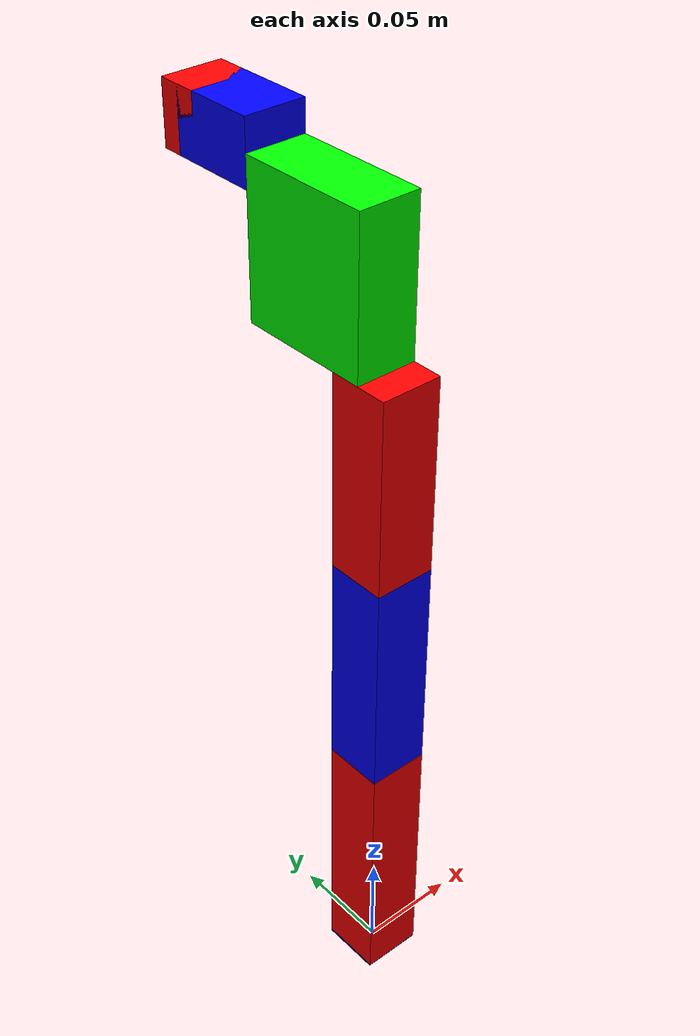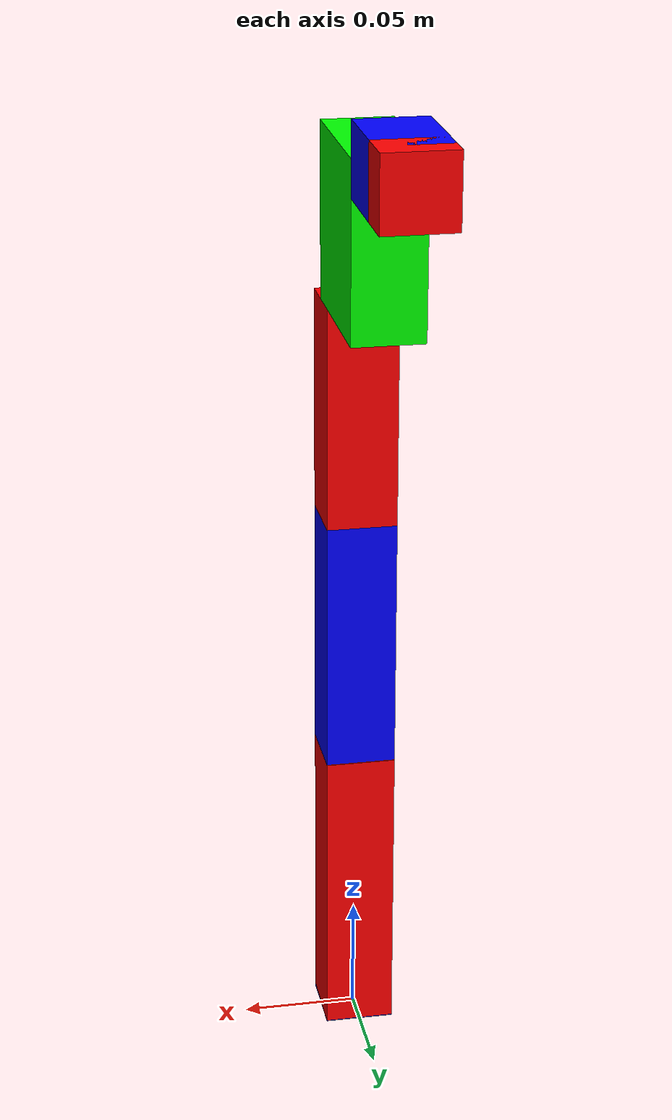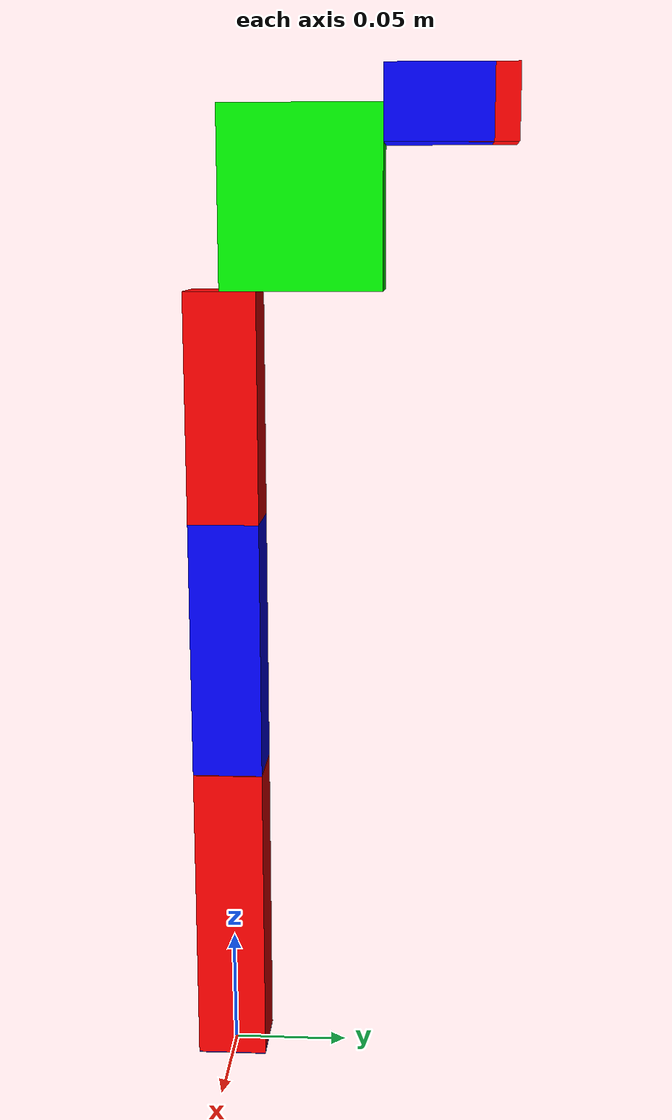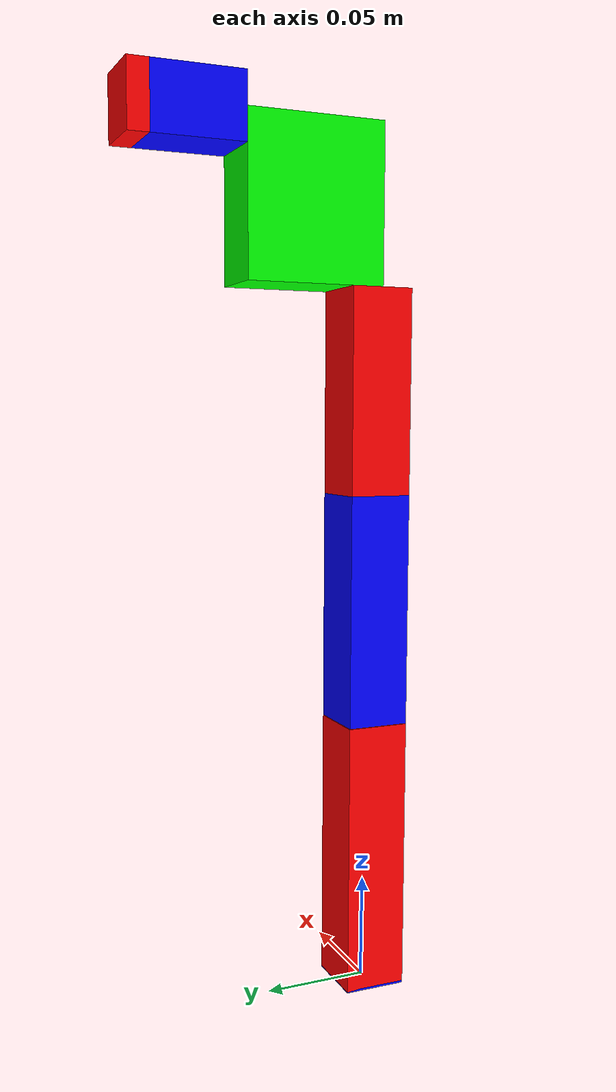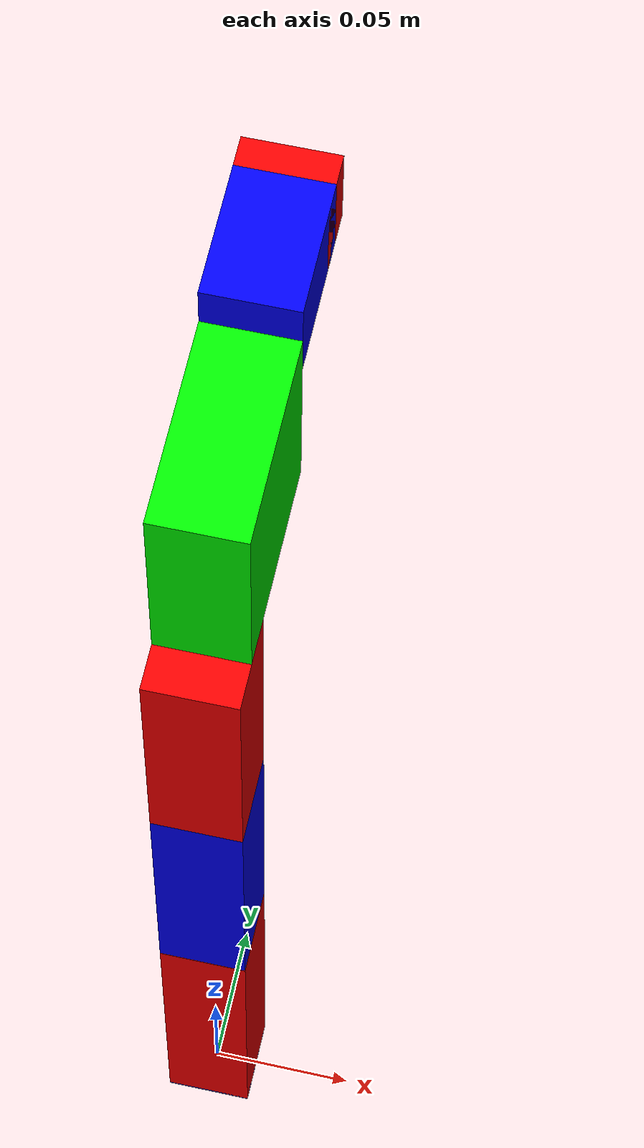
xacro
<?xml version="1.0"?>
<robot xmlns:xacro="http://www.ros.org/wiki/xacro" name="mycobot">
    <xacro:arg name="initial_positions_file" default="initial_positions.yaml" />

    <!-- Import mycobot urdf file -->
    <xacro:include filename="$(find moveit_setup_assistant)/mycobot.urdf" />

    <!-- Import control_xacro -->
    <xacro:include filename="mycobot.ros2_control.xacro" />

    <xacro:mycobot_ros2_control name="FakeSystem" initial_positions_file="$(arg initial_positions_file)"/>

</robot>

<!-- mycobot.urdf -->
<robot name="mycobot">

  <material name="red">
    <color rgba="1.0 0.0 0.0 1.0"/>
  </material>

  <material name="green">
    <color rgba="0.0 1.0 0.0 1.0"/>
  </material>

  <material name="blue">
    <color rgba="0.0 0.0 1.0 1.0"/>
  </material>

  <!-- world -->
  <link name="world"/>

  <joint name="world_2_base_link" type="fixed">
    <parent link="world"/>
    <child link="base_link"/>
    <origin rpy="0 0 0" xyz="0 0 0"/>

  </joint>

  <!-- base_link -->
  <link name="base_link">
    <collision>
      <origin rpy="0 0 0" xyz="0 0 0.0"/>
      <geometry>
        <box size="0.03 0.03 0.001"/>
      </geometry>
    </collision>

    <visual>
      <origin rpy="0 0 0" xyz="0 0 0.0"/>
      <geometry>
        <box size="0.03 0.03 0.001"/>
      </geometry>
      <material name="blue"/>
    </visual>

    <inertial>
      <origin rpy="0 0 0" xyz="0 0 0.0"/>
      <mass value="0"/>
      <inertia ixx="0" ixy="0" ixz="0" iyy="0" iyz="0" izz="0"/>
    </inertial>
  </link>

  <joint name="base_link_2_Link1" type="fixed">
    <parent link="base_link"/>
    <child link="Link1"/>
    <origin rpy="0 0 0" xyz="0 0 0"/>

  </joint>

  <!-- Link1 -->
  <link name="Link1">
    <collision>
      <origin rpy="0 0 0" xyz="0 0 0.065575"/>
      <geometry>
        <box size="0.03 0.03 0.13155"/>
      </geometry>
    </collision>

    <visual>
      <origin rpy="0 0 0" xyz="0 0 0.065575"/>
      <geometry>
        <box size="0.03 0.03 0.13155"/>
      </geometry>
      <material name="red"/>
    </visual>

    <inertial>
      <origin rpy="0 0 0" xyz="0 0 0.065575"/>
      <mass value="1"/>
      <inertia ixx="1" ixy="0" ixz="0" iyy="1" iyz="0" izz="1"/>
    </inertial>
  </link>

  <joint name="Link1_2_Link2" type="revolute">
    <parent link="Link1"/>
    <child link="Link2"/>
    <origin rpy="0 0 0" xyz="0 0 0.13155"/>

    <axis xyz="0 0 1"/>
    <limit effort="30" lower="-2.616" upper="2.617" velocity="1.571"/>

  </joint>

  <!-- Link2 -->
  <link name="Link2">
    <collision>
      <origin rpy="0 0 0" xyz="0 0 0"/>
      <geometry>
        <box size="0 0 0"/>
      </geometry>
    </collision>

    <visual>
      <origin rpy="0 0 0" xyz="0 0 0"/>
      <geometry>
        <box size="0 0 0"/>
      </geometry>
      <material name="green"/>
    </visual>

    <inertial>
      <origin rpy="0 0 0" xyz="0 0 0"/>
      <mass value="1"/>
      <inertia ixx="1" ixy="0" ixz="0" iyy="1" iyz="0" izz="1"/>
    </inertial>
  </link>

  <joint name="Link2_2_Link3" type="revolute">
    <parent link="Link2"/>
    <child link="Link3"/>
    <origin rpy="0 0 0" xyz="0 0 0"/>

    <axis xyz="0 1 0"/>
    <limit effort="30" lower="-2.616" upper="2.617" velocity="1.571"/>

  </joint>

  <!-- Link3 -->
  <link name="Link3">
    <collision>
      <origin rpy="0 0 0" xyz="0 0 0.0552"/>
      <geometry>
        <box size="0.03 0.03 0.1104"/>
      </geometry>
    </collision>

    <visual>
      <origin rpy="0 0 0" xyz="0 0 0.0552"/>
      <geometry>
        <box size="0.03 0.03 0.1104"/>
      </geometry>
      <material name="blue"/>
    </visual>

    <inertial>
      <origin rpy="0 0 0" xyz="0 0 0.0552"/>
      <mass value="1"/>
      <inertia ixx="1" ixy="0" ixz="0" iyy="1" iyz="0" izz="1"/>
    </inertial>
  </link>

  <joint name="Link3_2_Link4" type="revolute">
    <parent link="Link3"/>
    <child link="Link4"/>
    <origin rpy="0 0 0" xyz="0 0 0.1104"/>

    <axis xyz="0 1 0"/>
    <limit effort="30" lower="-2.616" upper="2.617" velocity="1.571"/>

  </joint>

  <!-- Link4 -->
  <link name="Link4">
    <collision>
      <origin rpy="0 0 0" xyz="0 0 0.048"/>
      <geometry>
        <box size="0.03 0.03 0.096"/>
      </geometry>
    </collision>

    <visual>
      <origin rpy="0 0 0" xyz="0 0 0.048"/>
      <geometry>
        <box size="0.03 0.03 0.096"/>
      </geometry>
      <material name="red"/>
    </visual>

    <inertial>
      <origin rpy="0 0 0" xyz="0 0 0.048"/>
      <mass value="1"/>
      <inertia ixx="1" ixy="0" ixz="0" iyy="1" iyz="0" izz="1"/>
    </inertial>
  </link>

  <joint name="Link4_2_Link5" type="revolute">
    <parent link="Link4"/>
    <child link="Link5"/>
    <origin rpy="0 0 0" xyz="0 0 0.096"/>

    <axis xyz="0 1 0"/>
    <limit effort="30" lower="-2.616" upper="2.617" velocity="1.571"/>

  </joint>

  <!-- Link5 -->
  <link name="Link5">
    <collision>
      <origin rpy="0 0 0" xyz="0 0.033195 0.03664"/>
      <geometry>
        <box size="0.03 0.06639 0.07328"/>
      </geometry>
    </collision>

    <visual>
      <origin rpy="0 0 0" xyz="0 0.033195 0.03664"/>
      <geometry>
        <box size="0.03 0.06639 0.07328"/>
      </geometry>
      <material name="green"/>
    </visual>

    <inertial>
      <origin rpy="0 0 0" xyz="0 0.033195 0.03664"/>
      <mass value="1"/>
      <inertia ixx="1" ixy="0" ixz="0" iyy="1" iyz="0" izz="1"/>
    </inertial>
  </link>

  <joint name="Link5_2_Link6" type="revolute">
    <parent link="Link5"/>
    <child link="Link6"/>
    <origin rpy="0 0 0" xyz="0 0.06639 0.07318"/>

    <axis xyz="0 0 1"/>
    <limit effort="30" lower="-2.616" upper="2.617" velocity="1.571"/>

  </joint>

  <!-- Link6 -->
  <link name="Link6">
    <collision>
      <origin rpy="0 0 0" xyz="0 0.0218 0"/>
      <geometry>
        <box size="0.03 0.0436 0.03"/>
      </geometry>
    </collision>

    <visual>
      <origin rpy="0 0 0" xyz="0 0.0218 0"/>
      <geometry>
        <box size="0.03 0.0436 0.03"/>
      </geometry>
      <material name="blue"/>
    </visual>

    <inertial>
      <origin rpy="0 0 0" xyz="0 0.0218 0"/>
      <mass value="1"/>
      <inertia ixx="1" ixy="0" ixz="0" iyy="1" iyz="0" izz="1"/>
    </inertial>
  </link>

  <joint name="Link6_2_Link7" type="revolute">
    <parent link="Link6"/>
    <child link="Link7"/>
    <origin rpy="0 0 0" xyz="0 0.0436 0"/>

    <axis xyz="0 1 0 "/>
    <limit effort="30" lower="-2.616" upper="2.617" velocity="1.571"/>

  </joint>

  <!-- Link7 -->
  <link name="Link7">
    <collision>
      <origin rpy="0 0 0" xyz="0 0 0"/>
      <geometry>
        <box size="0.03 0.02 0.03"/>
      </geometry>
    </collision>

    <visual>
      <origin rpy="0 0 0" xyz="0 0 0"/>
      <geometry>
        <box size="0.03 0.02 0.03"/>
      </geometry>
      <material name="red"/>
    </visual>

    <inertial>
      <origin rpy="0 0 0" xyz="0 0 0"/>
      <mass value="1"/>
      <inertia ixx="1" ixy="0" ixz="0" iyy="1" iyz="0" izz="1"/>
    </inertial>
  </link>

</robot>
